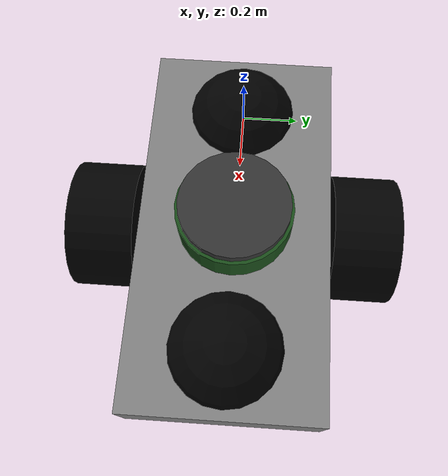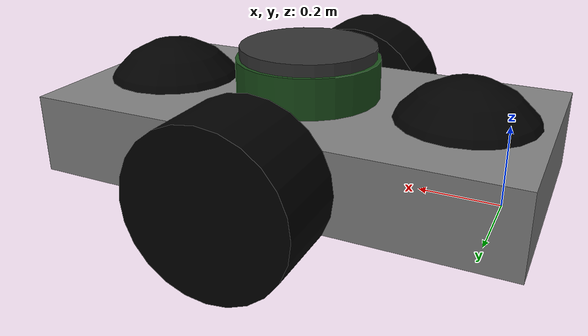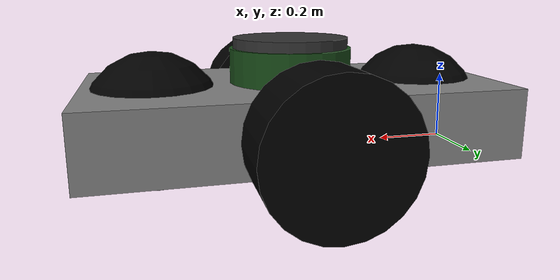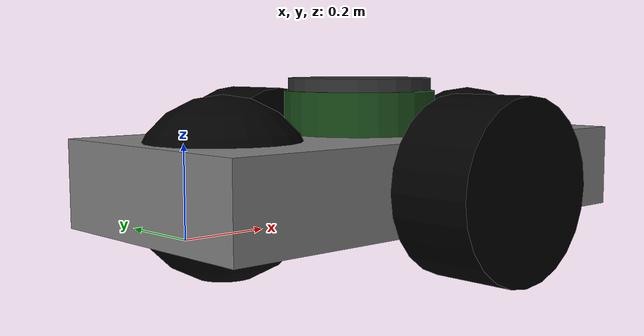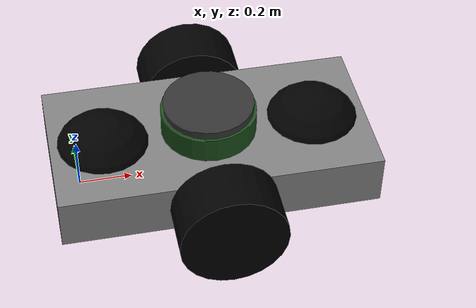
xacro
<?xml version="1.0" ?>
<robot name="myrobot">

<material name="grey">
    <color rgba="0.5 0.5 0.5 1"/>
</material>

<material name="black">
    <color rgba="0 0 0 1"/>
</material>

<material name="dark_green">
    <color rgba="0.1 0.3 0.1 1"/>
</material>

<material name="dark_grey">
    <color rgba="0.2 0.2 0.2 1"/>
</material>

<material name="dark_blue">
    <color rgba="0.1 0.25 0.5 1"/>
</material>

<link name="base_footprint"/>

<!-- Base Link -->

<joint name="base_joint" type="fixed">
    <parent link="base_footprint"/>
    <child link="base_link"/>
    <origin xyz="0.5 0 0" rpy="0 0 0"/>
</joint>

<link name="base_link">
    <visual>
        <origin xyz="0 0 0.1" rpy="0 0 0"/>
        <geometry>
            <box size="1.2 0.6 0.2"/>
        </geometry>
        <material name="grey"/>
    </visual>
</link>

<!-- Left Wheel -->

<joint name="lbwheel_joint" type="continuous">
    <parent link="base_link"/>
    <child link="lbwheel"/>
    <origin xyz="0 0.3 0.1" rpy="-${pi/2} 0 0"/>
    <axis xyz="0 0 -1"/>
</joint>

<link name="lbwheel">
    <visual>
        <origin xyz="0 0 0.1" rpy="0 0 0"/>
        <geometry>
            <cylinder radius="0.2" length="0.2"/>
        </geometry>
        <material name="black"/>
    </visual>
</link>

<!-- Front Castor Wheel -->

<joint name="lfwheel_joint" type="continuous">
    <parent link="base_link"/>
    <child link="lfwheel"/>
    <origin xyz="0.4 0 0.1" rpy="0 0 0"/>
</joint>

<link name="lfwheel">
    <visual>
        <origin xyz="0 0 0" rpy="0 0 0"/>
        <geometry>
            <sphere radius="0.2"/>
        </geometry>
        <material name="black"/>
    </visual>
</link>

<!-- Right Front Wheel -->

<joint name="rfwheel_joint" type="continuous">
    <parent link="base_link"/>
    <child link="rfwheel"/>
    <origin xyz="0 -0.3 0.1" rpy="-${pi/2} 0 0"/>
    <axis xyz="0 0 -1"/>
</joint>

<link name="rfwheel">
    <visual>
        <origin xyz="0 0 -0.1" rpy="0 0 0"/>
        <geometry>
            <cylinder radius="0.2" length="0.2"/>
        </geometry>
        <material name="black"/>
    </visual>
</link>

<!-- Back Castor Wheel -->

<joint name="rbwheel_joint" type="continuous">
    <parent link="base_link"/>
    <child link="rbwheel"/>
    <origin xyz="-0.4 0 0.1" rpy="0 0 0"/>
</joint>

<link name="rbwheel">
    <visual>
        <origin xyz="0 0 0" rpy="0 0 0"/>
        <geometry>
            <sphere radius="0.2"/>
        </geometry>
        <material name="black"/>
    </visual>
</link>

<!-- Shooter base -->

<joint name="shooter_joint" type="fixed">
    <parent link="base_link"/>
    <child link="shooter_base"/>
    <origin xyz="0 0 0.2" rpy="0 0 0"/>
</joint>

<link name="shooter_base">
    <visual>
        <origin xyz="0 0 0.05" rpy="0 0 0"/>
        <geometry>
            <cylinder radius="0.18" length="0.1"/>
        </geometry>
        <material name="dark_green"/>
    </visual>
</link>

<!-- Rotator -->

<joint name="rotator_joint" type="revolute">
    <parent link="shooter_base"/>
    <child link="rotator"/>
    <origin xyz="0 0 0.1" rpy="0 0 0"/>
    <axis xyz="0 0 1"/>
    <limit effort="100" velocity="1.0" lower="-${pi}" upper="${pi}"/>
</joint>

<link name="rotator">
    <visual>
        <origin xyz="0 0 0.015" rpy="0 0 0"/>
        <geometry>
            <cylinder radius="0.17" length="0.03"/>
        </geometry>
        <material name="dark_grey"/>
    </visual>
</link>

</robot>
